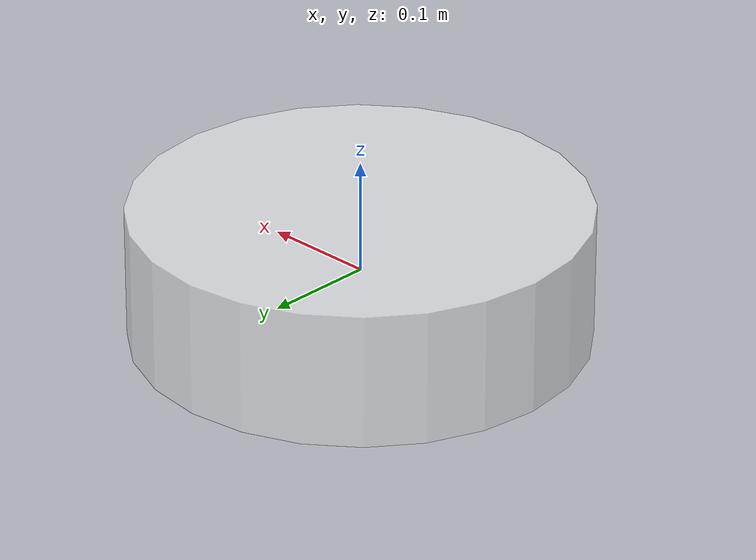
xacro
<?xml version="1.0"?>
<robot xmlns:xacro="http://www.ros.org/wiki/xacro" name="first_robot">
    <!-- 机器人的身体部分 -->
    <xacro:macro name="base_link" params="length radius">
        <link name="base_link">
        <!-- 部件的外观 -->
            <visual>
                <!-- 沿着自己几何中心的偏移和旋转量 -->
                <origin xyz="0.0 0.0 0.0" rpy="0.0 0.0 0.0"/>
                <!-- 几何形状 -->
                <geometry>
                    <!-- 圆柱体 -->
                    <cylinder radius="${radius}" length="${length}"/>
                </geometry>
                <!-- 材质和颜色 -->
                <material name="white">
                    <color rgba="1.0 1.0 1.0 0.5"/>
                </material>
            </visual>
        </link>
    </xacro:macro>

    <xacro:macro name="imu_link" params="imu_name xyz">
        <link name="${imu_name}_link">
            <!-- 部件的外观 -->
            <visual>
                <!-- 沿着自己几何中心的偏移和旋转量 -->
                <origin xyz="0.0 0.0 0.0" rpy="0.0 0.0 0.0"/>
                <!-- 几何形状 -->
                <geometry>
                    <!-- 圆柱体 -->
                    <box size="0.02 0.02 0.02"/>
                </geometry>
                <!-- 材质和颜色 -->
                <material name="white">
                    <color rgba="0 0 0 0.5"/>
                </material>
            </visual>
        </link>

        <!-- 机器人关节 用于组合机器人部件 -->
        <joint name="${imu_name}_joint" type="fixed">
            <origin xyz="${xyz}" rpy="0.0 0.0 0.0"/>
            <parent link="base_link"/>
            <child link="${imu_name}_link"/>
        </joint>
    </xacro:macro>

    <xacro:base_link length="0.12" radius="0.2"/>
    <xacro:imu_link imu_name="imu_up" xyz="0.0 0.0 0.03"/>
    <xacro:imu_link imu_name="imu_down" xyz="0.0 0.0 -0.03"/>

</robot>
